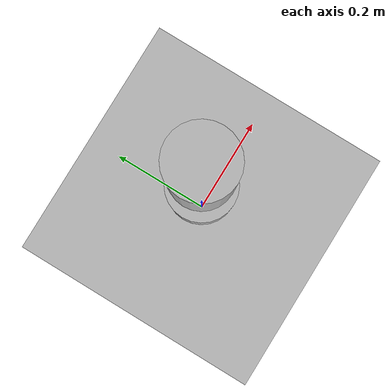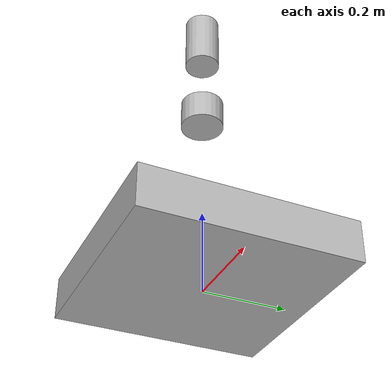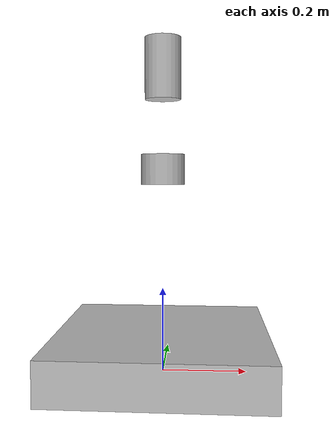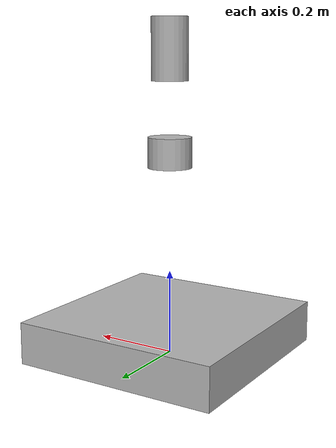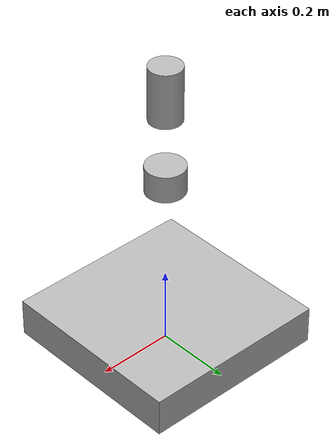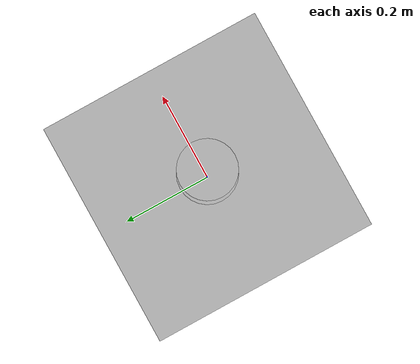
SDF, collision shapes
<sdf version='1.7'>
  <model name='example'>
    <link name='base_footprint'>
      <inertial>
        <pose>0 0 0.138199 0 -0 0</pose>
        <mass>11.85</mass>
        <inertia>
          <ixx>3.52702</ixx>
          <ixy>0</ixy>
          <ixz>0</ixz>
          <iyy>3.52702</iyy>
          <iyz>0</iyz>
          <izz>3.00202</izz>
        </inertia>
      </inertial>
      <collision name='base_footprint_fixed_joint_lump__base_link_collision'>
        <pose>0 0 0.05 0 -0 0</pose>
        <geometry>
          <box>
            <size>0.5 0.5 0.1</size>
          </box>
        </geometry>
      </collision>
      <collision name='base_footprint_fixed_joint_lump__velodyne2_base_link_collision_1'>
        <pose>0 0 0.72212 0 -0 0</pose>
        <geometry>
          <cylinder>
            <length>0.14424</length>
            <radius>0.04267</radius>
          </cylinder>
        </geometry>
      </collision>
      <collision name='base_footprint_fixed_joint_lump__velodyne2_collision_2'>
        <pose>0 0 0.74081 0 -0 0</pose>
        <geometry>
          <sphere>
            <radius>0</radius>
          </sphere>
        </geometry>
        <surface>
          <contact>
            <ode/>
          </contact>
          <friction>
            <ode/>
          </friction>
        </surface>
      </collision>
      <collision name='base_footprint_fixed_joint_lump__velodyne_base_link_collision_3'>
        <pose>0 0 0.48585 0 -0 0</pose>
        <geometry>
          <cylinder>
            <length>0.0717</length>
            <radius>0.0516</radius>
          </cylinder>
        </geometry>
      </collision>
      <collision name='base_footprint_fixed_joint_lump__velodyne_collision_4'>
        <pose>0 0 0.4877 0 -0 0</pose>
        <geometry>
          <sphere>
            <radius>0</radius>
          </sphere>
        </geometry>
        <surface>
          <contact>
            <ode/>
          </contact>
          <friction>
            <ode/>
          </friction>
        </surface>
      </collision>
      <visual name='base_footprint_fixed_joint_lump__base_link_visual'>
        <pose>0 0 0.05 0 -0 0</pose>
        <geometry>
          <box>
            <size>0.5 0.5 0.1</size>
          </box>
        </geometry>
      </visual>
      <visual name='base_footprint_fixed_joint_lump__velodyne2_base_link_visual_1'>
        <pose>0 0 0.65 0 -0 0</pose>
        <geometry>
          <mesh>
            <scale>1 1 1</scale>
            <uri>model://velodyne_description/meshes/HDL32E_base.dae</uri>
          </mesh>
        </geometry>
      </visual>
      <visual name='base_footprint_fixed_joint_lump__velodyne2_visual_2'>
        <pose>0 0 0.65 0 -0 0</pose>
        <geometry>
          <mesh>
            <scale>1 1 1</scale>
            <uri>model://velodyne_description/meshes/HDL32E_scan.dae</uri>
          </mesh>
        </geometry>
      </visual>
      <visual name='base_footprint_fixed_joint_lump__velodyne_base_link_visual_3'>
        <pose>0 0 0.45 0 -0 0</pose>
        <geometry>
          <mesh>
            <scale>1 1 1</scale>
            <uri>model://velodyne_description/meshes/VLP16_base_1.dae</uri>
          </mesh>
        </geometry>
      </visual>
      <visual name='base_footprint_fixed_joint_lump__velodyne_base_link_visual_4'>
        <pose>0 0 0.45 0 -0 0</pose>
        <geometry>
          <mesh>
            <scale>1 1 1</scale>
            <uri>model://velodyne_description/meshes/VLP16_base_2.dae</uri>
          </mesh>
        </geometry>
      </visual>
      <visual name='base_footprint_fixed_joint_lump__velodyne_visual_5'>
        <pose>0 0 0.45 0 -0 0</pose>
        <geometry>
          <mesh>
            <scale>1 1 1</scale>
            <uri>model://velodyne_description/meshes/VLP16_scan.dae</uri>
          </mesh>
        </geometry>
      </visual>
      <sensor name='velodyne2-HDL32E' type='ray'>
        <visualize>0</visualize>
        <update_rate>10</update_rate>
        <ray>
          <scan>
            <horizontal>
              <samples>220</samples>
              <resolution>1</resolution>
              <min_angle>-3.14159</min_angle>
              <max_angle>3.14159</max_angle>
            </horizontal>
            <vertical>
              <samples>32</samples>
              <resolution>1</resolution>
              <min_angle>-0.535292</min_angle>
              <max_angle>0.186227</max_angle>
            </vertical>
          </scan>
          <range>
            <min>0.3</min>
            <max>131</max>
            <resolution>0.001</resolution>
          </range>
          <noise>
            <type>gaussian</type>
            <mean>0</mean>
            <stddev>0</stddev>
          </noise>
        </ray>
        <plugin name='gazebo_ros_laser_controller' filename='libgazebo_ros_velodyne_laser.so'>
          <topicName>/velodyne_points2</topicName>
          <frameName>velodyne2</frameName>
          <organize_cloud>0</organize_cloud>
          <min_range>0.9</min_range>
          <max_range>130.0</max_range>
          <gaussianNoise>0.008</gaussianNoise>
        </plugin>
        <pose>0 0 0.74081 0 -0 0</pose>
      </sensor>
      <sensor name='velodyne-VLP16' type='ray'>
        <visualize>0</visualize>
        <update_rate>10</update_rate>
        <ray>
          <scan>
            <horizontal>
              <samples>440</samples>
              <resolution>1</resolution>
              <min_angle>-3.14159</min_angle>
              <max_angle>3.14159</max_angle>
            </horizontal>
            <vertical>
              <samples>16</samples>
              <resolution>1</resolution>
              <min_angle>-0.261799</min_angle>
              <max_angle>0.261799</max_angle>
            </vertical>
          </scan>
          <range>
            <min>0.3</min>
            <max>131</max>
            <resolution>0.001</resolution>
          </range>
          <noise>
            <type>gaussian</type>
            <mean>0</mean>
            <stddev>0</stddev>
          </noise>
        </ray>
        <plugin name='gazebo_ros_laser_controller' filename='libgazebo_ros_velodyne_laser.so'>
          <topicName>/velodyne_points</topicName>
          <frameName>velodyne</frameName>
          <organize_cloud>0</organize_cloud>
          <min_range>0.9</min_range>
          <max_range>130.0</max_range>
          <gaussianNoise>0.008</gaussianNoise>
        </plugin>
        <pose>0 0 0.4877 0 -0 0</pose>
      </sensor>
    </link>
    <frame name='velodyne2_base_scan_joint' attached_to='velodyne2_base_link'>
      <pose>0 0 0.09081 0 -0 0</pose>
    </frame>
    <frame name='velodyne2' attached_to='velodyne2_base_scan_joint'/>
    <frame name='velodyne2_base_mount_joint' attached_to='base_link'>
      <pose>0 0 0.6 0 -0 0</pose>
    </frame>
    <frame name='velodyne2_base_link' attached_to='velodyne2_base_mount_joint'/>
    <frame name='velodyne_base_scan_joint' attached_to='velodyne_base_link'>
      <pose>0 0 0.0377 0 -0 0</pose>
    </frame>
    <frame name='velodyne' attached_to='velodyne_base_scan_joint'/>
    <frame name='velodyne_base_mount_joint' attached_to='base_link'>
      <pose>0 0 0.4 0 -0 0</pose>
    </frame>
    <frame name='velodyne_base_link' attached_to='velodyne_base_mount_joint'/>
    <frame name='footprint' attached_to='base_footprint'>
      <pose>0 0 0.05 0 -0 0</pose>
    </frame>
    <frame name='base_link' attached_to='footprint'/>
  </model>
</sdf>
